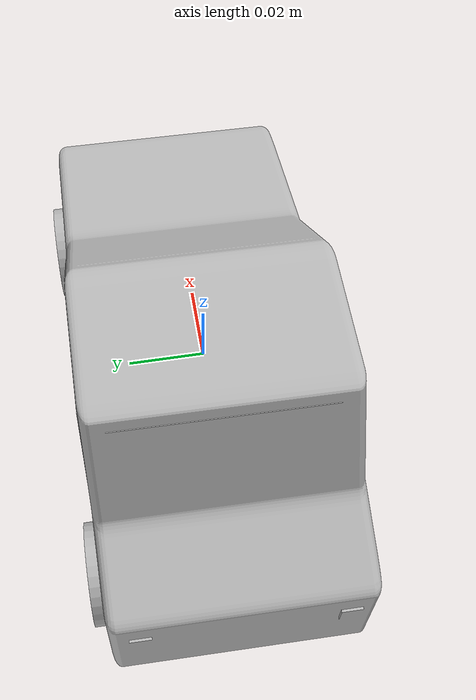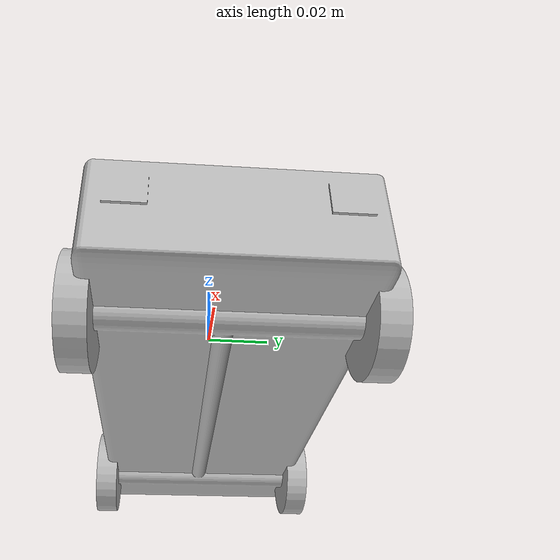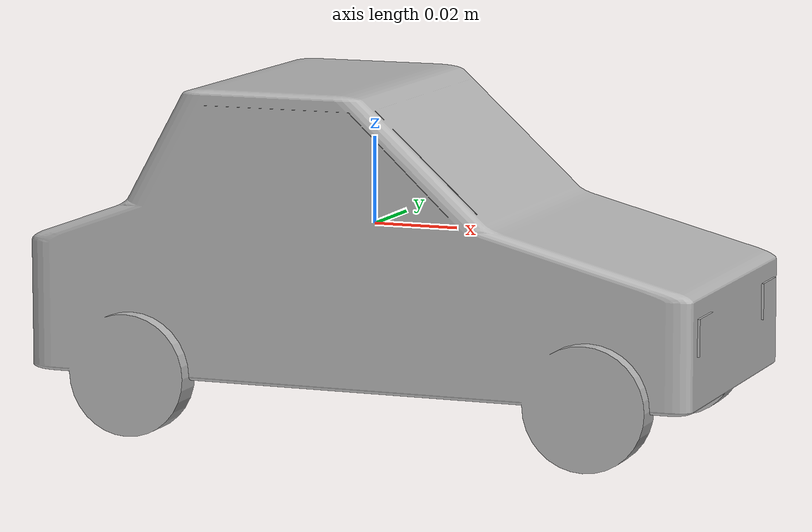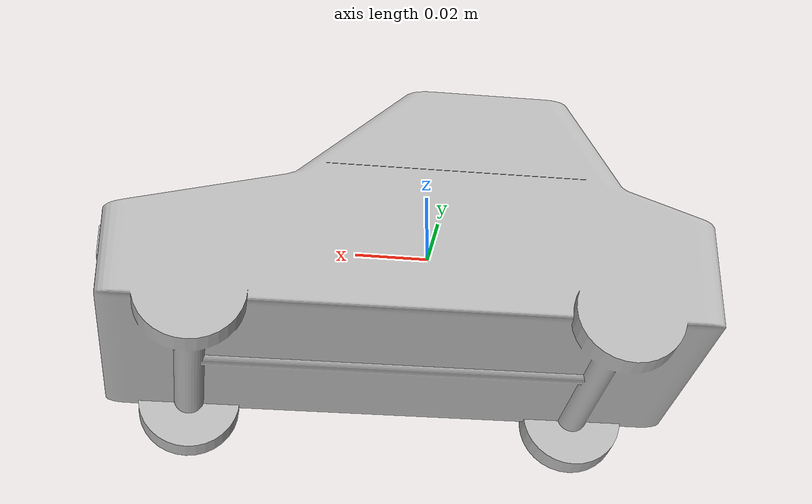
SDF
<?xml version='1.0'?>
<sdf version='1.6'>
    <model name='car'>
        <pose frame=''>0.0 0.0 0.0 0.0 0.0 0.</pose>
        <link name='base_link_car'>
            <gravity>0</gravity>
            <visual name='base_link_car_vis'>
                <geometry>
                    <mesh>
                        <scale>1.2 1.2 1.2</scale>
                        <uri>model://meshes/car_gazebo.dae</uri>
                    </mesh>
                </geometry>
            </visual>
            <collision name='base_link_car_col'>
                <geometry>
                    <mesh>
                        <scale>1.2 1.2 1.2</scale>
                        <uri>model://meshes/car_gazebo.dae</uri>
                    </mesh>
                </geometry>
            </collision>
        </link>
    </model>
</sdf>
